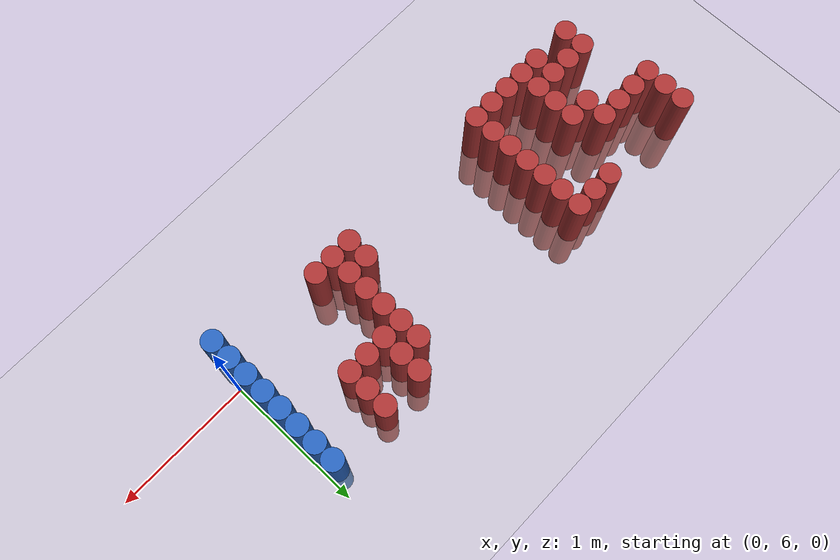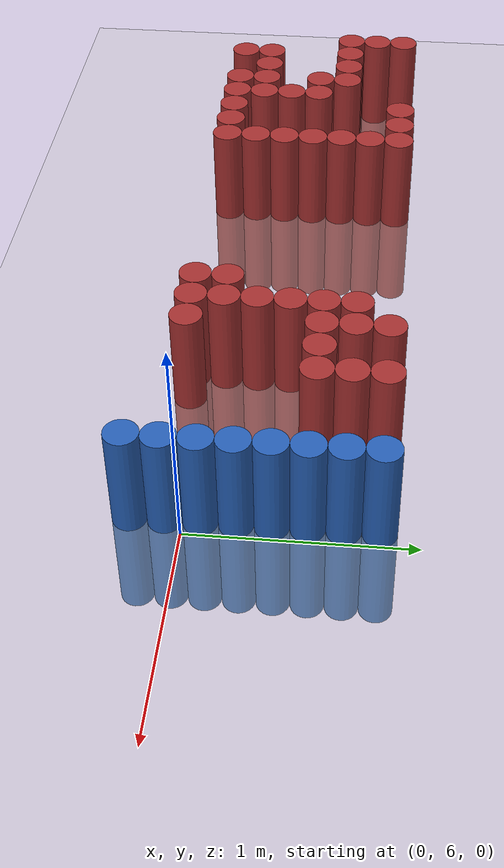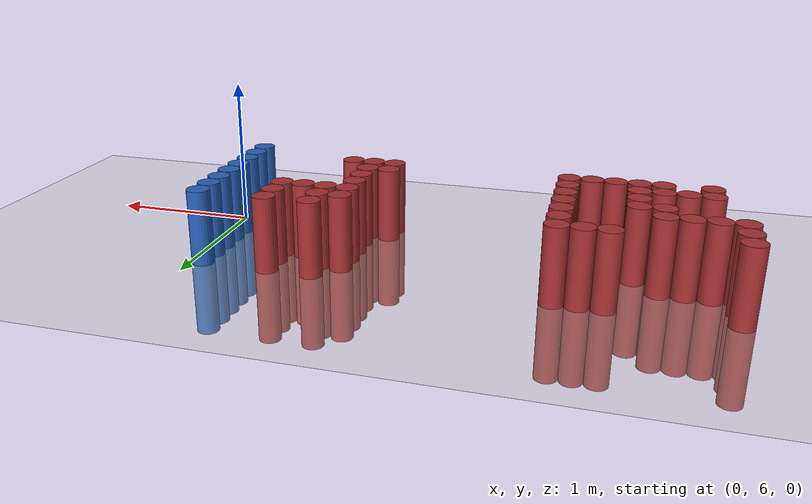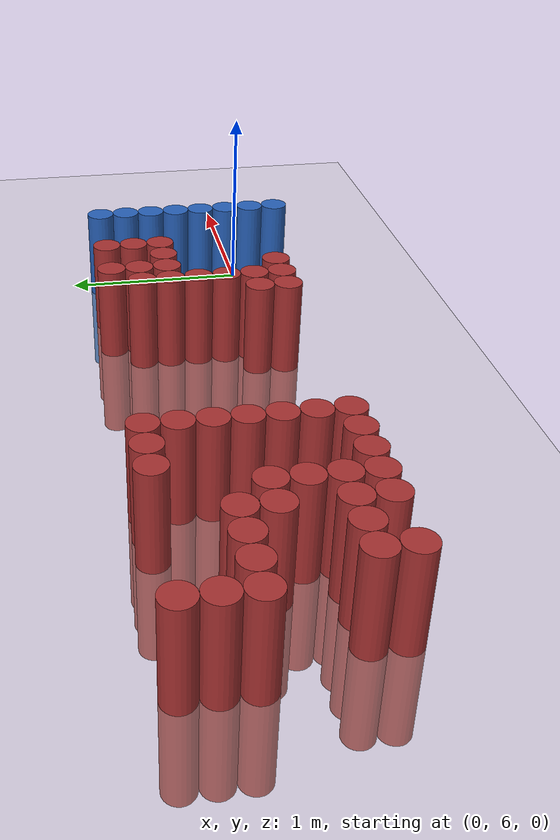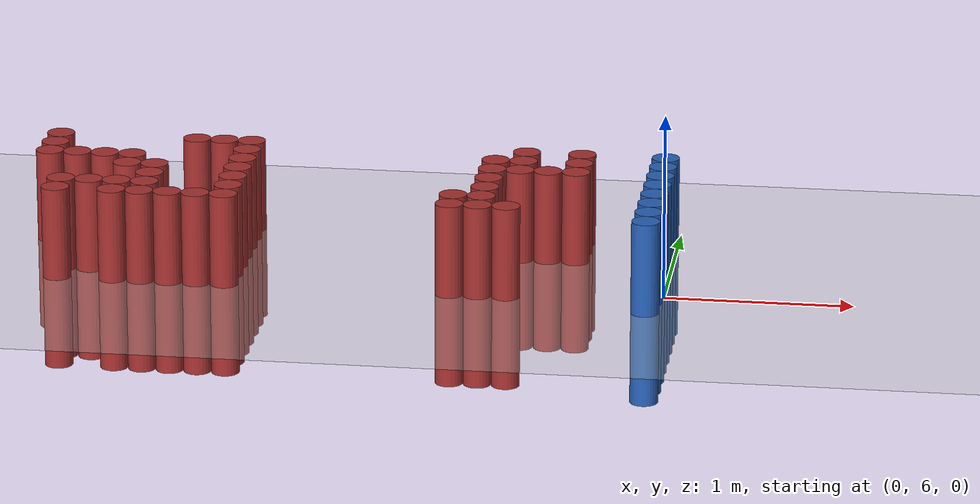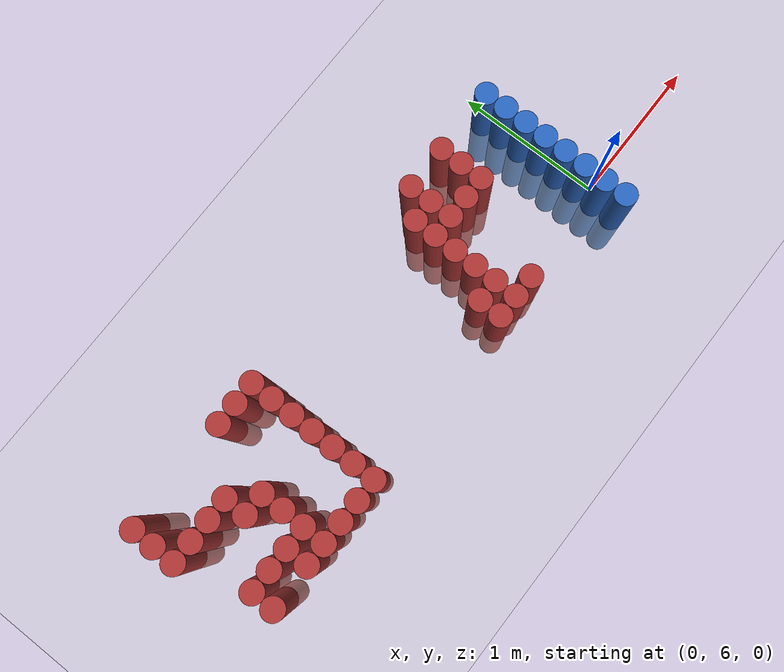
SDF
<sdf version="1.6">
 <world name="default">
  <model name="ground_plane">
   <static>1</static>
   <link name="link">
    <collision name="collision">
     <geometry><plane><normal>0 0 1</normal><size>100 100</size></plane></geometry>
     <surface><friction><ode><mu>100</mu><mu2>50</mu2></ode></friction></surface>
    </collision>
    <visual name="visual">
     <cast_shadows>0</cast_shadows>
     <geometry><plane><normal>0 0 1</normal><size>100 100</size></plane></geometry>
     <material>
      <script><uri>file://media/materials/scripts/gazebo.material</uri><name>Gazebo/Grey</name></script>
     </material>
    </visual>
   </link>
  </model>
  <model name="unit_cylinder_163">
   <static>1</static>
   <pose>-3.375000 6.525000 0.000000 0.000000 0.000000 0.000000</pose>
   <link name="link">
    <inertial>
     <mass>1</mass>
     <inertia><ixx>0.145833</ixx><ixy>0</ixy><ixz>0</ixz><iyy>0.145833</iyy><iyz>0</iyz><izz>0.125</izz></inertia>
    </inertial>
    <collision name="collision">
     <geometry><cylinder><radius>0.075000</radius><length>1</length></cylinder></geometry>
    </collision>
    <visual name="visual">
     <geometry><cylinder><radius>0.075000</radius><length>1</length></cylinder></geometry>
     <material>
      <ambient>0.648000 0.192000 0.192000 1</ambient>
      <diffuse>0.648000 0.192000 0.192000 1</diffuse>
     </material>
     <material>
      <script><name>Gazebo/Grey</name><uri>file://media/materials/scripts/gazebo.material</uri></script>
     </material>
    </visual>
   </link>
  </model>
  <model name="unit_cylinder_164">
   <static>1</static>
   <pose>-3.375000 6.675000 0.000000 0.000000 0.000000 0.000000</pose>
   <link name="link">
    <inertial>
     <mass>1</mass>
     <inertia><ixx>0.145833</ixx><ixy>0</ixy><ixz>0</ixz><iyy>0.145833</iyy><iyz>0</iyz><izz>0.125</izz></inertia>
    </inertial>
    <collision name="collision">
     <geometry><cylinder><radius>0.075000</radius><length>1</length></cylinder></geometry>
    </collision>
    <visual name="visual">
     <geometry><cylinder><radius>0.075000</radius><length>1</length></cylinder></geometry>
     <material>
      <ambient>0.648000 0.192000 0.192000 1</ambient>
      <diffuse>0.648000 0.192000 0.192000 1</diffuse>
     </material>
     <material>
      <script><name>Gazebo/Grey</name><uri>file://media/materials/scripts/gazebo.material</uri></script>
     </material>
    </visual>
   </link>
  </model>
  <model name="unit_cylinder_165">
   <static>1</static>
   <pose>-3.375000 6.825000 0.000000 0.000000 0.000000 0.000000</pose>
   <link name="link">
    <inertial>
     <mass>1</mass>
     <inertia><ixx>0.145833</ixx><ixy>0</ixy><ixz>0</ixz><iyy>0.145833</iyy><iyz>0</iyz><izz>0.125</izz></inertia>
    </inertial>
    <collision name="collision">
     <geometry><cylinder><radius>0.075000</radius><length>1</length></cylinder></geometry>
    </collision>
    <visual name="visual">
     <geometry><cylinder><radius>0.075000</radius><length>1</length></cylinder></geometry>
     <material>
      <ambient>0.648000 0.192000 0.192000 1</ambient>
      <diffuse>0.648000 0.192000 0.192000 1</diffuse>
     </material>
     <material>
      <script><name>Gazebo/Grey</name><uri>file://media/materials/scripts/gazebo.material</uri></script>
     </material>
    </visual>
   </link>
  </model>
  <model name="unit_cylinder_170">
   <static>1</static>
   <pose>-3.225000 5.925000 0.000000 0.000000 0.000000 0.000000</pose>
   <link name="link">
    <inertial>
     <mass>1</mass>
     <inertia><ixx>0.145833</ixx><ixy>0</ixy><ixz>0</ixz><iyy>0.145833</iyy><iyz>0</iyz><izz>0.125</izz></inertia>
    </inertial>
    <collision name="collision">
     <geometry><cylinder><radius>0.075000</radius><length>1</length></cylinder></geometry>
    </collision>
    <visual name="visual">
     <geometry><cylinder><radius>0.075000</radius><length>1</length></cylinder></geometry>
     <material>
      <ambient>0.648000 0.192000 0.192000 1</ambient>
      <diffuse>0.648000 0.192000 0.192000 1</diffuse>
     </material>
     <material>
      <script><name>Gazebo/Grey</name><uri>file://media/materials/scripts/gazebo.material</uri></script>
     </material>
    </visual>
   </link>
  </model>
  <model name="unit_cylinder_171">
   <static>1</static>
   <pose>-3.225000 6.075000 0.000000 0.000000 0.000000 0.000000</pose>
   <link name="link">
    <inertial>
     <mass>1</mass>
     <inertia><ixx>0.145833</ixx><ixy>0</ixy><ixz>0</ixz><iyy>0.145833</iyy><iyz>0</iyz><izz>0.125</izz></inertia>
    </inertial>
    <collision name="collision">
     <geometry><cylinder><radius>0.075000</radius><length>1</length></cylinder></geometry>
    </collision>
    <visual name="visual">
     <geometry><cylinder><radius>0.075000</radius><length>1</length></cylinder></geometry>
     <material>
      <ambient>0.648000 0.192000 0.192000 1</ambient>
      <diffuse>0.648000 0.192000 0.192000 1</diffuse>
     </material>
     <material>
      <script><name>Gazebo/Grey</name><uri>file://media/materials/scripts/gazebo.material</uri></script>
     </material>
    </visual>
   </link>
  </model>
  <model name="unit_cylinder_172">
   <static>1</static>
   <pose>-3.225000 6.525000 0.000000 0.000000 0.000000 0.000000</pose>
   <link name="link">
    <inertial>
     <mass>1</mass>
     <inertia><ixx>0.145833</ixx><ixy>0</ixy><ixz>0</ixz><iyy>0.145833</iyy><iyz>0</iyz><izz>0.125</izz></inertia>
    </inertial>
    <collision name="collision">
     <geometry><cylinder><radius>0.075000</radius><length>1</length></cylinder></geometry>
    </collision>
    <visual name="visual">
     <geometry><cylinder><radius>0.075000</radius><length>1</length></cylinder></geometry>
     <material>
      <ambient>0.648000 0.192000 0.192000 1</ambient>
      <diffuse>0.648000 0.192000 0.192000 1</diffuse>
     </material>
     <material>
      <script><name>Gazebo/Grey</name><uri>file://media/materials/scripts/gazebo.material</uri></script>
     </material>
    </visual>
   </link>
  </model>
  <model name="unit_cylinder_180">
   <static>1</static>
   <pose>-3.075000 6.075000 0.000000 0.000000 0.000000 0.000000</pose>
   <link name="link">
    <inertial>
     <mass>1</mass>
     <inertia><ixx>0.145833</ixx><ixy>0</ixy><ixz>0</ixz><iyy>0.145833</iyy><iyz>0</iyz><izz>0.125</izz></inertia>
    </inertial>
    <collision name="collision">
     <geometry><cylinder><radius>0.075000</radius><length>1</length></cylinder></geometry>
    </collision>
    <visual name="visual">
     <geometry><cylinder><radius>0.075000</radius><length>1</length></cylinder></geometry>
     <material>
      <ambient>0.648000 0.192000 0.192000 1</ambient>
      <diffuse>0.648000 0.192000 0.192000 1</diffuse>
     </material>
     <material>
      <script><name>Gazebo/Grey</name><uri>file://media/materials/scripts/gazebo.material</uri></script>
     </material>
    </visual>
   </link>
  </model>
  <model name="unit_cylinder_181">
   <static>1</static>
   <pose>-3.075000 6.525000 0.000000 0.000000 0.000000 0.000000</pose>
   <link name="link">
    <inertial>
     <mass>1</mass>
     <inertia><ixx>0.145833</ixx><ixy>0</ixy><ixz>0</ixz><iyy>0.145833</iyy><iyz>0</iyz><izz>0.125</izz></inertia>
    </inertial>
    <collision name="collision">
     <geometry><cylinder><radius>0.075000</radius><length>1</length></cylinder></geometry>
    </collision>
    <visual name="visual">
     <geometry><cylinder><radius>0.075000</radius><length>1</length></cylinder></geometry>
     <material>
      <ambient>0.648000 0.192000 0.192000 1</ambient>
      <diffuse>0.648000 0.192000 0.192000 1</diffuse>
     </material>
     <material>
      <script><name>Gazebo/Grey</name><uri>file://media/materials/scripts/gazebo.material</uri></script>
     </material>
    </visual>
   </link>
  </model>
  <model name="unit_cylinder_191">
   <static>1</static>
   <pose>-2.925000 5.925000 0.000000 0.000000 0.000000 0.000000</pose>
   <link name="link">
    <inertial>
     <mass>1</mass>
     <inertia><ixx>0.145833</ixx><ixy>0</ixy><ixz>0</ixz><iyy>0.145833</iyy><iyz>0</iyz><izz>0.125</izz></inertia>
    </inertial>
    <collision name="collision">
     <geometry><cylinder><radius>0.075000</radius><length>1</length></cylinder></geometry>
    </collision>
    <visual name="visual">
     <geometry><cylinder><radius>0.075000</radius><length>1</length></cylinder></geometry>
     <material>
      <ambient>0.648000 0.192000 0.192000 1</ambient>
      <diffuse>0.648000 0.192000 0.192000 1</diffuse>
     </material>
     <material>
      <script><name>Gazebo/Grey</name><uri>file://media/materials/scripts/gazebo.material</uri></script>
     </material>
    </visual>
   </link>
  </model>
  <model name="unit_cylinder_192">
   <static>1</static>
   <pose>-2.925000 6.075000 0.000000 0.000000 0.000000 0.000000</pose>
   <link name="link">
    <inertial>
     <mass>1</mass>
     <inertia><ixx>0.145833</ixx><ixy>0</ixy><ixz>0</ixz><iyy>0.145833</iyy><iyz>0</iyz><izz>0.125</izz></inertia>
    </inertial>
    <collision name="collision">
     <geometry><cylinder><radius>0.075000</radius><length>1</length></cylinder></geometry>
    </collision>
    <visual name="visual">
     <geometry><cylinder><radius>0.075000</radius><length>1</length></cylinder></geometry>
     <material>
      <ambient>0.648000 0.192000 0.192000 1</ambient>
      <diffuse>0.648000 0.192000 0.192000 1</diffuse>
     </material>
     <material>
      <script><name>Gazebo/Grey</name><uri>file://media/materials/scripts/gazebo.material</uri></script>
     </material>
    </visual>
   </link>
  </model>
  <model name="unit_cylinder_193">
   <static>1</static>
   <pose>-2.925000 6.375000 0.000000 0.000000 0.000000 0.000000</pose>
   <link name="link">
    <inertial>
     <mass>1</mass>
     <inertia><ixx>0.145833</ixx><ixy>0</ixy><ixz>0</ixz><iyy>0.145833</iyy><iyz>0</iyz><izz>0.125</izz></inertia>
    </inertial>
    <collision name="collision">
     <geometry><cylinder><radius>0.075000</radius><length>1</length></cylinder></geometry>
    </collision>
    <visual name="visual">
     <geometry><cylinder><radius>0.075000</radius><length>1</length></cylinder></geometry>
     <material>
      <ambient>0.648000 0.192000 0.192000 1</ambient>
      <diffuse>0.648000 0.192000 0.192000 1</diffuse>
     </material>
     <material>
      <script><name>Gazebo/Grey</name><uri>file://media/materials/scripts/gazebo.material</uri></script>
     </material>
    </visual>
   </link>
  </model>
  <model name="unit_cylinder_194">
   <static>1</static>
   <pose>-2.925000 6.525000 0.000000 0.000000 0.000000 0.000000</pose>
   <link name="link">
    <inertial>
     <mass>1</mass>
     <inertia><ixx>0.145833</ixx><ixy>0</ixy><ixz>0</ixz><iyy>0.145833</iyy><iyz>0</iyz><izz>0.125</izz></inertia>
    </inertial>
    <collision name="collision">
     <geometry><cylinder><radius>0.075000</radius><length>1</length></cylinder></geometry>
    </collision>
    <visual name="visual">
     <geometry><cylinder><radius>0.075000</radius><length>1</length></cylinder></geometry>
     <material>
      <ambient>0.648000 0.192000 0.192000 1</ambient>
      <diffuse>0.648000 0.192000 0.192000 1</diffuse>
     </material>
     <material>
      <script><name>Gazebo/Grey</name><uri>file://media/materials/scripts/gazebo.material</uri></script>
     </material>
    </visual>
   </link>
  </model>
  <model name="unit_cylinder_199">
   <static>1</static>
   <pose>-2.775000 5.925000 0.000000 0.000000 0.000000 0.000000</pose>
   <link name="link">
    <inertial>
     <mass>1</mass>
     <inertia><ixx>0.145833</ixx><ixy>0</ixy><ixz>0</ixz><iyy>0.145833</iyy><iyz>0</iyz><izz>0.125</izz></inertia>
    </inertial>
    <collision name="collision">
     <geometry><cylinder><radius>0.075000</radius><length>1</length></cylinder></geometry>
    </collision>
    <visual name="visual">
     <geometry><cylinder><radius>0.075000</radius><length>1</length></cylinder></geometry>
     <material>
      <ambient>0.648000 0.192000 0.192000 1</ambient>
      <diffuse>0.648000 0.192000 0.192000 1</diffuse>
     </material>
     <material>
      <script><name>Gazebo/Grey</name><uri>file://media/materials/scripts/gazebo.material</uri></script>
     </material>
    </visual>
   </link>
  </model>
  <model name="unit_cylinder_200">
   <static>1</static>
   <pose>-2.775000 6.075000 0.000000 0.000000 0.000000 0.000000</pose>
   <link name="link">
    <inertial>
     <mass>1</mass>
     <inertia><ixx>0.145833</ixx><ixy>0</ixy><ixz>0</ixz><iyy>0.145833</iyy><iyz>0</iyz><izz>0.125</izz></inertia>
    </inertial>
    <collision name="collision">
     <geometry><cylinder><radius>0.075000</radius><length>1</length></cylinder></geometry>
    </collision>
    <visual name="visual">
     <geometry><cylinder><radius>0.075000</radius><length>1</length></cylinder></geometry>
     <material>
      <ambient>0.648000 0.192000 0.192000 1</ambient>
      <diffuse>0.648000 0.192000 0.192000 1</diffuse>
     </material>
     <material>
      <script><name>Gazebo/Grey</name><uri>file://media/materials/scripts/gazebo.material</uri></script>
     </material>
    </visual>
   </link>
  </model>
  <model name="unit_cylinder_201">
   <static>1</static>
   <pose>-2.775000 6.225000 0.000000 0.000000 0.000000 0.000000</pose>
   <link name="link">
    <inertial>
     <mass>1</mass>
     <inertia><ixx>0.145833</ixx><ixy>0</ixy><ixz>0</ixz><iyy>0.145833</iyy><iyz>0</iyz><izz>0.125</izz></inertia>
    </inertial>
    <collision name="collision">
     <geometry><cylinder><radius>0.075000</radius><length>1</length></cylinder></geometry>
    </collision>
    <visual name="visual">
     <geometry><cylinder><radius>0.075000</radius><length>1</length></cylinder></geometry>
     <material>
      <ambient>0.648000 0.192000 0.192000 1</ambient>
      <diffuse>0.648000 0.192000 0.192000 1</diffuse>
     </material>
     <material>
      <script><name>Gazebo/Grey</name><uri>file://media/materials/scripts/gazebo.material</uri></script>
     </material>
    </visual>
   </link>
  </model>
  <model name="unit_cylinder_202">
   <static>1</static>
   <pose>-2.775000 6.375000 0.000000 0.000000 0.000000 0.000000</pose>
   <link name="link">
    <inertial>
     <mass>1</mass>
     <inertia><ixx>0.145833</ixx><ixy>0</ixy><ixz>0</ixz><iyy>0.145833</iyy><iyz>0</iyz><izz>0.125</izz></inertia>
    </inertial>
    <collision name="collision">
     <geometry><cylinder><radius>0.075000</radius><length>1</length></cylinder></geometry>
    </collision>
    <visual name="visual">
     <geometry><cylinder><radius>0.075000</radius><length>1</length></cylinder></geometry>
     <material>
      <ambient>0.648000 0.192000 0.192000 1</ambient>
      <diffuse>0.648000 0.192000 0.192000 1</diffuse>
     </material>
     <material>
      <script><name>Gazebo/Grey</name><uri>file://media/materials/scripts/gazebo.material</uri></script>
     </material>
    </visual>
   </link>
  </model>
  <model name="unit_cylinder_206">
   <static>1</static>
   <pose>-2.625000 5.925000 0.000000 0.000000 0.000000 0.000000</pose>
   <link name="link">
    <inertial>
     <mass>1</mass>
     <inertia><ixx>0.145833</ixx><ixy>0</ixy><ixz>0</ixz><iyy>0.145833</iyy><iyz>0</iyz><izz>0.125</izz></inertia>
    </inertial>
    <collision name="collision">
     <geometry><cylinder><radius>0.075000</radius><length>1</length></cylinder></geometry>
    </collision>
    <visual name="visual">
     <geometry><cylinder><radius>0.075000</radius><length>1</length></cylinder></geometry>
     <material>
      <ambient>0.648000 0.192000 0.192000 1</ambient>
      <diffuse>0.648000 0.192000 0.192000 1</diffuse>
     </material>
     <material>
      <script><name>Gazebo/Grey</name><uri>file://media/materials/scripts/gazebo.material</uri></script>
     </material>
    </visual>
   </link>
  </model>
  <model name="unit_cylinder_207">
   <static>1</static>
   <pose>-2.625000 6.825000 0.000000 0.000000 0.000000 0.000000</pose>
   <link name="link">
    <inertial>
     <mass>1</mass>
     <inertia><ixx>0.145833</ixx><ixy>0</ixy><ixz>0</ixz><iyy>0.145833</iyy><iyz>0</iyz><izz>0.125</izz></inertia>
    </inertial>
    <collision name="collision">
     <geometry><cylinder><radius>0.075000</radius><length>1</length></cylinder></geometry>
    </collision>
    <visual name="visual">
     <geometry><cylinder><radius>0.075000</radius><length>1</length></cylinder></geometry>
     <material>
      <ambient>0.648000 0.192000 0.192000 1</ambient>
      <diffuse>0.648000 0.192000 0.192000 1</diffuse>
     </material>
     <material>
      <script><name>Gazebo/Grey</name><uri>file://media/materials/scripts/gazebo.material</uri></script>
     </material>
    </visual>
   </link>
  </model>
  <model name="unit_cylinder_214">
   <static>1</static>
   <pose>-2.475000 5.925000 0.000000 0.000000 0.000000 0.000000</pose>
   <link name="link">
    <inertial>
     <mass>1</mass>
     <inertia><ixx>0.145833</ixx><ixy>0</ixy><ixz>0</ixz><iyy>0.145833</iyy><iyz>0</iyz><izz>0.125</izz></inertia>
    </inertial>
    <collision name="collision">
     <geometry><cylinder><radius>0.075000</radius><length>1</length></cylinder></geometry>
    </collision>
    <visual name="visual">
     <geometry><cylinder><radius>0.075000</radius><length>1</length></cylinder></geometry>
     <material>
      <ambient>0.648000 0.192000 0.192000 1</ambient>
      <diffuse>0.648000 0.192000 0.192000 1</diffuse>
     </material>
     <material>
      <script><name>Gazebo/Grey</name><uri>file://media/materials/scripts/gazebo.material</uri></script>
     </material>
    </visual>
   </link>
  </model>
  <model name="unit_cylinder_215">
   <static>1</static>
   <pose>-2.475000 6.825000 0.000000 0.000000 0.000000 0.000000</pose>
   <link name="link">
    <inertial>
     <mass>1</mass>
     <inertia><ixx>0.145833</ixx><ixy>0</ixy><ixz>0</ixz><iyy>0.145833</iyy><iyz>0</iyz><izz>0.125</izz></inertia>
    </inertial>
    <collision name="collision">
     <geometry><cylinder><radius>0.075000</radius><length>1</length></cylinder></geometry>
    </collision>
    <visual name="visual">
     <geometry><cylinder><radius>0.075000</radius><length>1</length></cylinder></geometry>
     <material>
      <ambient>0.648000 0.192000 0.192000 1</ambient>
      <diffuse>0.648000 0.192000 0.192000 1</diffuse>
     </material>
     <material>
      <script><name>Gazebo/Grey</name><uri>file://media/materials/scripts/gazebo.material</uri></script>
     </material>
    </visual>
   </link>
  </model>
  <model name="unit_cylinder_218">
   <static>1</static>
   <pose>-2.325000 5.925000 0.000000 0.000000 0.000000 0.000000</pose>
   <link name="link">
    <inertial>
     <mass>1</mass>
     <inertia><ixx>0.145833</ixx><ixy>0</ixy><ixz>0</ixz><iyy>0.145833</iyy><iyz>0</iyz><izz>0.125</izz></inertia>
    </inertial>
    <collision name="collision">
     <geometry><cylinder><radius>0.075000</radius><length>1</length></cylinder></geometry>
    </collision>
    <visual name="visual">
     <geometry><cylinder><radius>0.075000</radius><length>1</length></cylinder></geometry>
     <material>
      <ambient>0.648000 0.192000 0.192000 1</ambient>
      <diffuse>0.648000 0.192000 0.192000 1</diffuse>
     </material>
     <material>
      <script><name>Gazebo/Grey</name><uri>file://media/materials/scripts/gazebo.material</uri></script>
     </material>
    </visual>
   </link>
  </model>
  <model name="unit_cylinder_219">
   <static>1</static>
   <pose>-2.325000 6.075000 0.000000 0.000000 0.000000 0.000000</pose>
   <link name="link">
    <inertial>
     <mass>1</mass>
     <inertia><ixx>0.145833</ixx><ixy>0</ixy><ixz>0</ixz><iyy>0.145833</iyy><iyz>0</iyz><izz>0.125</izz></inertia>
    </inertial>
    <collision name="collision">
     <geometry><cylinder><radius>0.075000</radius><length>1</length></cylinder></geometry>
    </collision>
    <visual name="visual">
     <geometry><cylinder><radius>0.075000</radius><length>1</length></cylinder></geometry>
     <material>
      <ambient>0.648000 0.192000 0.192000 1</ambient>
      <diffuse>0.648000 0.192000 0.192000 1</diffuse>
     </material>
     <material>
      <script><name>Gazebo/Grey</name><uri>file://media/materials/scripts/gazebo.material</uri></script>
     </material>
    </visual>
   </link>
  </model>
  <model name="unit_cylinder_220">
   <static>1</static>
   <pose>-2.325000 6.225000 0.000000 0.000000 0.000000 0.000000</pose>
   <link name="link">
    <inertial>
     <mass>1</mass>
     <inertia><ixx>0.145833</ixx><ixy>0</ixy><ixz>0</ixz><iyy>0.145833</iyy><iyz>0</iyz><izz>0.125</izz></inertia>
    </inertial>
    <collision name="collision">
     <geometry><cylinder><radius>0.075000</radius><length>1</length></cylinder></geometry>
    </collision>
    <visual name="visual">
     <geometry><cylinder><radius>0.075000</radius><length>1</length></cylinder></geometry>
     <material>
      <ambient>0.648000 0.192000 0.192000 1</ambient>
      <diffuse>0.648000 0.192000 0.192000 1</diffuse>
     </material>
     <material>
      <script><name>Gazebo/Grey</name><uri>file://media/materials/scripts/gazebo.material</uri></script>
     </material>
    </visual>
   </link>
  </model>
  <model name="unit_cylinder_221">
   <static>1</static>
   <pose>-2.325000 6.375000 0.000000 0.000000 0.000000 0.000000</pose>
   <link name="link">
    <inertial>
     <mass>1</mass>
     <inertia><ixx>0.145833</ixx><ixy>0</ixy><ixz>0</ixz><iyy>0.145833</iyy><iyz>0</iyz><izz>0.125</izz></inertia>
    </inertial>
    <collision name="collision">
     <geometry><cylinder><radius>0.075000</radius><length>1</length></cylinder></geometry>
    </collision>
    <visual name="visual">
     <geometry><cylinder><radius>0.075000</radius><length>1</length></cylinder></geometry>
     <material>
      <ambient>0.648000 0.192000 0.192000 1</ambient>
      <diffuse>0.648000 0.192000 0.192000 1</diffuse>
     </material>
     <material>
      <script><name>Gazebo/Grey</name><uri>file://media/materials/scripts/gazebo.material</uri></script>
     </material>
    </visual>
   </link>
  </model>
  <model name="unit_cylinder_222">
   <static>1</static>
   <pose>-2.325000 6.525000 0.000000 0.000000 0.000000 0.000000</pose>
   <link name="link">
    <inertial>
     <mass>1</mass>
     <inertia><ixx>0.145833</ixx><ixy>0</ixy><ixz>0</ixz><iyy>0.145833</iyy><iyz>0</iyz><izz>0.125</izz></inertia>
    </inertial>
    <collision name="collision">
     <geometry><cylinder><radius>0.075000</radius><length>1</length></cylinder></geometry>
    </collision>
    <visual name="visual">
     <geometry><cylinder><radius>0.075000</radius><length>1</length></cylinder></geometry>
     <material>
      <ambient>0.648000 0.192000 0.192000 1</ambient>
      <diffuse>0.648000 0.192000 0.192000 1</diffuse>
     </material>
     <material>
      <script><name>Gazebo/Grey</name><uri>file://media/materials/scripts/gazebo.material</uri></script>
     </material>
    </visual>
   </link>
  </model>
  <model name="unit_cylinder_223">
   <static>1</static>
   <pose>-2.325000 6.675000 0.000000 0.000000 0.000000 0.000000</pose>
   <link name="link">
    <inertial>
     <mass>1</mass>
     <inertia><ixx>0.145833</ixx><ixy>0</ixy><ixz>0</ixz><iyy>0.145833</iyy><iyz>0</iyz><izz>0.125</izz></inertia>
    </inertial>
    <collision name="collision">
     <geometry><cylinder><radius>0.075000</radius><length>1</length></cylinder></geometry>
    </collision>
    <visual name="visual">
     <geometry><cylinder><radius>0.075000</radius><length>1</length></cylinder></geometry>
     <material>
      <ambient>0.648000 0.192000 0.192000 1</ambient>
      <diffuse>0.648000 0.192000 0.192000 1</diffuse>
     </material>
     <material>
      <script><name>Gazebo/Grey</name><uri>file://media/materials/scripts/gazebo.material</uri></script>
     </material>
    </visual>
   </link>
  </model>
  <model name="unit_cylinder_224">
   <static>1</static>
   <pose>-2.325000 6.825000 0.000000 0.000000 0.000000 0.000000</pose>
   <link name="link">
    <inertial>
     <mass>1</mass>
     <inertia><ixx>0.145833</ixx><ixy>0</ixy><ixz>0</ixz><iyy>0.145833</iyy><iyz>0</iyz><izz>0.125</izz></inertia>
    </inertial>
    <collision name="collision">
     <geometry><cylinder><radius>0.075000</radius><length>1</length></cylinder></geometry>
    </collision>
    <visual name="visual">
     <geometry><cylinder><radius>0.075000</radius><length>1</length></cylinder></geometry>
     <material>
      <ambient>0.648000 0.192000 0.192000 1</ambient>
      <diffuse>0.648000 0.192000 0.192000 1</diffuse>
     </material>
     <material>
      <script><name>Gazebo/Grey</name><uri>file://media/materials/scripts/gazebo.material</uri></script>
     </material>
    </visual>
   </link>
  </model>
  <model name="unit_cylinder_239">
   <static>1</static>
   <pose>-1.125000 5.925000 0.000000 0.000000 0.000000 0.000000</pose>
   <link name="link">
    <inertial>
     <mass>1</mass>
     <inertia><ixx>0.145833</ixx><ixy>0</ixy><ixz>0</ixz><iyy>0.145833</iyy><iyz>0</iyz><izz>0.125</izz></inertia>
    </inertial>
    <collision name="collision">
     <geometry><cylinder><radius>0.075000</radius><length>1</length></cylinder></geometry>
    </collision>
    <visual name="visual">
     <geometry><cylinder><radius>0.075000</radius><length>1</length></cylinder></geometry>
     <material>
      <ambient>0.648000 0.192000 0.192000 1</ambient>
      <diffuse>0.648000 0.192000 0.192000 1</diffuse>
     </material>
     <material>
      <script><name>Gazebo/Grey</name><uri>file://media/materials/scripts/gazebo.material</uri></script>
     </material>
    </visual>
   </link>
  </model>
  <model name="unit_cylinder_240">
   <static>1</static>
   <pose>-1.125000 6.075000 0.000000 0.000000 0.000000 0.000000</pose>
   <link name="link">
    <inertial>
     <mass>1</mass>
     <inertia><ixx>0.145833</ixx><ixy>0</ixy><ixz>0</ixz><iyy>0.145833</iyy><iyz>0</iyz><izz>0.125</izz></inertia>
    </inertial>
    <collision name="collision">
     <geometry><cylinder><radius>0.075000</radius><length>1</length></cylinder></geometry>
    </collision>
    <visual name="visual">
     <geometry><cylinder><radius>0.075000</radius><length>1</length></cylinder></geometry>
     <material>
      <ambient>0.648000 0.192000 0.192000 1</ambient>
      <diffuse>0.648000 0.192000 0.192000 1</diffuse>
     </material>
     <material>
      <script><name>Gazebo/Grey</name><uri>file://media/materials/scripts/gazebo.material</uri></script>
     </material>
    </visual>
   </link>
  </model>
  <model name="unit_cylinder_245">
   <static>1</static>
   <pose>-0.975000 5.925000 0.000000 0.000000 0.000000 0.000000</pose>
   <link name="link">
    <inertial>
     <mass>1</mass>
     <inertia><ixx>0.145833</ixx><ixy>0</ixy><ixz>0</ixz><iyy>0.145833</iyy><iyz>0</iyz><izz>0.125</izz></inertia>
    </inertial>
    <collision name="collision">
     <geometry><cylinder><radius>0.075000</radius><length>1</length></cylinder></geometry>
    </collision>
    <visual name="visual">
     <geometry><cylinder><radius>0.075000</radius><length>1</length></cylinder></geometry>
     <material>
      <ambient>0.648000 0.192000 0.192000 1</ambient>
      <diffuse>0.648000 0.192000 0.192000 1</diffuse>
     </material>
     <material>
      <script><name>Gazebo/Grey</name><uri>file://media/materials/scripts/gazebo.material</uri></script>
     </material>
    </visual>
   </link>
  </model>
  <model name="unit_cylinder_246">
   <static>1</static>
   <pose>-0.975000 6.075000 0.000000 0.000000 0.000000 0.000000</pose>
   <link name="link">
    <inertial>
     <mass>1</mass>
     <inertia><ixx>0.145833</ixx><ixy>0</ixy><ixz>0</ixz><iyy>0.145833</iyy><iyz>0</iyz><izz>0.125</izz></inertia>
    </inertial>
    <collision name="collision">
     <geometry><cylinder><radius>0.075000</radius><length>1</length></cylinder></geometry>
    </collision>
    <visual name="visual">
     <geometry><cylinder><radius>0.075000</radius><length>1</length></cylinder></geometry>
     <material>
      <ambient>0.648000 0.192000 0.192000 1</ambient>
      <diffuse>0.648000 0.192000 0.192000 1</diffuse>
     </material>
     <material>
      <script><name>Gazebo/Grey</name><uri>file://media/materials/scripts/gazebo.material</uri></script>
     </material>
    </visual>
   </link>
  </model>
  <model name="unit_cylinder_247">
   <static>1</static>
   <pose>-0.975000 6.225000 0.000000 0.000000 0.000000 0.000000</pose>
   <link name="link">
    <inertial>
     <mass>1</mass>
     <inertia><ixx>0.145833</ixx><ixy>0</ixy><ixz>0</ixz><iyy>0.145833</iyy><iyz>0</iyz><izz>0.125</izz></inertia>
    </inertial>
    <collision name="collision">
     <geometry><cylinder><radius>0.075000</radius><length>1</length></cylinder></geometry>
    </collision>
    <visual name="visual">
     <geometry><cylinder><radius>0.075000</radius><length>1</length></cylinder></geometry>
     <material>
      <ambient>0.648000 0.192000 0.192000 1</ambient>
      <diffuse>0.648000 0.192000 0.192000 1</diffuse>
     </material>
     <material>
      <script><name>Gazebo/Grey</name><uri>file://media/materials/scripts/gazebo.material</uri></script>
     </material>
    </visual>
   </link>
  </model>
  <model name="unit_cylinder_248">
   <static>1</static>
   <pose>-0.975000 6.375000 0.000000 0.000000 0.000000 0.000000</pose>
   <link name="link">
    <inertial>
     <mass>1</mass>
     <inertia><ixx>0.145833</ixx><ixy>0</ixy><ixz>0</ixz><iyy>0.145833</iyy><iyz>0</iyz><izz>0.125</izz></inertia>
    </inertial>
    <collision name="collision">
     <geometry><cylinder><radius>0.075000</radius><length>1</length></cylinder></geometry>
    </collision>
    <visual name="visual">
     <geometry><cylinder><radius>0.075000</radius><length>1</length></cylinder></geometry>
     <material>
      <ambient>0.648000 0.192000 0.192000 1</ambient>
      <diffuse>0.648000 0.192000 0.192000 1</diffuse>
     </material>
     <material>
      <script><name>Gazebo/Grey</name><uri>file://media/materials/scripts/gazebo.material</uri></script>
     </material>
    </visual>
   </link>
  </model>
  <model name="unit_cylinder_249">
   <static>1</static>
   <pose>-0.975000 6.525000 0.000000 0.000000 0.000000 0.000000</pose>
   <link name="link">
    <inertial>
     <mass>1</mass>
     <inertia><ixx>0.145833</ixx><ixy>0</ixy><ixz>0</ixz><iyy>0.145833</iyy><iyz>0</iyz><izz>0.125</izz></inertia>
    </inertial>
    <collision name="collision">
     <geometry><cylinder><radius>0.075000</radius><length>1</length></cylinder></geometry>
    </collision>
    <visual name="visual">
     <geometry><cylinder><radius>0.075000</radius><length>1</length></cylinder></geometry>
     <material>
      <ambient>0.648000 0.192000 0.192000 1</ambient>
      <diffuse>0.648000 0.192000 0.192000 1</diffuse>
     </material>
     <material>
      <script><name>Gazebo/Grey</name><uri>file://media/materials/scripts/gazebo.material</uri></script>
     </material>
    </visual>
   </link>
  </model>
  <model name="unit_cylinder_250">
   <static>1</static>
   <pose>-0.975000 6.675000 0.000000 0.000000 0.000000 0.000000</pose>
   <link name="link">
    <inertial>
     <mass>1</mass>
     <inertia><ixx>0.145833</ixx><ixy>0</ixy><ixz>0</ixz><iyy>0.145833</iyy><iyz>0</iyz><izz>0.125</izz></inertia>
    </inertial>
    <collision name="collision">
     <geometry><cylinder><radius>0.075000</radius><length>1</length></cylinder></geometry>
    </collision>
    <visual name="visual">
     <geometry><cylinder><radius>0.075000</radius><length>1</length></cylinder></geometry>
     <material>
      <ambient>0.648000 0.192000 0.192000 1</ambient>
      <diffuse>0.648000 0.192000 0.192000 1</diffuse>
     </material>
     <material>
      <script><name>Gazebo/Grey</name><uri>file://media/materials/scripts/gazebo.material</uri></script>
     </material>
    </visual>
   </link>
  </model>
  <model name="unit_cylinder_254">
   <static>1</static>
   <pose>-0.825000 5.925000 0.000000 0.000000 0.000000 0.000000</pose>
   <link name="link">
    <inertial>
     <mass>1</mass>
     <inertia><ixx>0.145833</ixx><ixy>0</ixy><ixz>0</ixz><iyy>0.145833</iyy><iyz>0</iyz><izz>0.125</izz></inertia>
    </inertial>
    <collision name="collision">
     <geometry><cylinder><radius>0.075000</radius><length>1</length></cylinder></geometry>
    </collision>
    <visual name="visual">
     <geometry><cylinder><radius>0.075000</radius><length>1</length></cylinder></geometry>
     <material>
      <ambient>0.648000 0.192000 0.192000 1</ambient>
      <diffuse>0.648000 0.192000 0.192000 1</diffuse>
     </material>
     <material>
      <script><name>Gazebo/Grey</name><uri>file://media/materials/scripts/gazebo.material</uri></script>
     </material>
    </visual>
   </link>
  </model>
  <model name="unit_cylinder_255">
   <static>1</static>
   <pose>-0.825000 6.525000 0.000000 0.000000 0.000000 0.000000</pose>
   <link name="link">
    <inertial>
     <mass>1</mass>
     <inertia><ixx>0.145833</ixx><ixy>0</ixy><ixz>0</ixz><iyy>0.145833</iyy><iyz>0</iyz><izz>0.125</izz></inertia>
    </inertial>
    <collision name="collision">
     <geometry><cylinder><radius>0.075000</radius><length>1</length></cylinder></geometry>
    </collision>
    <visual name="visual">
     <geometry><cylinder><radius>0.075000</radius><length>1</length></cylinder></geometry>
     <material>
      <ambient>0.648000 0.192000 0.192000 1</ambient>
      <diffuse>0.648000 0.192000 0.192000 1</diffuse>
     </material>
     <material>
      <script><name>Gazebo/Grey</name><uri>file://media/materials/scripts/gazebo.material</uri></script>
     </material>
    </visual>
   </link>
  </model>
  <model name="unit_cylinder_256">
   <static>1</static>
   <pose>-0.825000 6.675000 0.000000 0.000000 0.000000 0.000000</pose>
   <link name="link">
    <inertial>
     <mass>1</mass>
     <inertia><ixx>0.145833</ixx><ixy>0</ixy><ixz>0</ixz><iyy>0.145833</iyy><iyz>0</iyz><izz>0.125</izz></inertia>
    </inertial>
    <collision name="collision">
     <geometry><cylinder><radius>0.075000</radius><length>1</length></cylinder></geometry>
    </collision>
    <visual name="visual">
     <geometry><cylinder><radius>0.075000</radius><length>1</length></cylinder></geometry>
     <material>
      <ambient>0.648000 0.192000 0.192000 1</ambient>
      <diffuse>0.648000 0.192000 0.192000 1</diffuse>
     </material>
     <material>
      <script><name>Gazebo/Grey</name><uri>file://media/materials/scripts/gazebo.material</uri></script>
     </material>
    </visual>
   </link>
  </model>
  <model name="unit_cylinder_257">
   <static>1</static>
   <pose>-0.825000 6.825000 0.000000 0.000000 0.000000 0.000000</pose>
   <link name="link">
    <inertial>
     <mass>1</mass>
     <inertia><ixx>0.145833</ixx><ixy>0</ixy><ixz>0</ixz><iyy>0.145833</iyy><iyz>0</iyz><izz>0.125</izz></inertia>
    </inertial>
    <collision name="collision">
     <geometry><cylinder><radius>0.075000</radius><length>1</length></cylinder></geometry>
    </collision>
    <visual name="visual">
     <geometry><cylinder><radius>0.075000</radius><length>1</length></cylinder></geometry>
     <material>
      <ambient>0.648000 0.192000 0.192000 1</ambient>
      <diffuse>0.648000 0.192000 0.192000 1</diffuse>
     </material>
     <material>
      <script><name>Gazebo/Grey</name><uri>file://media/materials/scripts/gazebo.material</uri></script>
     </material>
    </visual>
   </link>
  </model>
  <model name="unit_cylinder_262">
   <static>1</static>
   <pose>-0.675000 6.525000 0.000000 0.000000 0.000000 0.000000</pose>
   <link name="link">
    <inertial>
     <mass>1</mass>
     <inertia><ixx>0.145833</ixx><ixy>0</ixy><ixz>0</ixz><iyy>0.145833</iyy><iyz>0</iyz><izz>0.125</izz></inertia>
    </inertial>
    <collision name="collision">
     <geometry><cylinder><radius>0.075000</radius><length>1</length></cylinder></geometry>
    </collision>
    <visual name="visual">
     <geometry><cylinder><radius>0.075000</radius><length>1</length></cylinder></geometry>
     <material>
      <ambient>0.648000 0.192000 0.192000 1</ambient>
      <diffuse>0.648000 0.192000 0.192000 1</diffuse>
     </material>
     <material>
      <script><name>Gazebo/Grey</name><uri>file://media/materials/scripts/gazebo.material</uri></script>
     </material>
    </visual>
   </link>
  </model>
  <model name="unit_cylinder_267">
   <static>1</static>
   <pose>-0.525000 6.525000 0.000000 0.000000 0.000000 0.000000</pose>
   <link name="link">
    <inertial>
     <mass>1</mass>
     <inertia><ixx>0.145833</ixx><ixy>0</ixy><ixz>0</ixz><iyy>0.145833</iyy><iyz>0</iyz><izz>0.125</izz></inertia>
    </inertial>
    <collision name="collision">
     <geometry><cylinder><radius>0.075000</radius><length>1</length></cylinder></geometry>
    </collision>
    <visual name="visual">
     <geometry><cylinder><radius>0.075000</radius><length>1</length></cylinder></geometry>
     <material>
      <ambient>0.648000 0.192000 0.192000 1</ambient>
      <diffuse>0.648000 0.192000 0.192000 1</diffuse>
     </material>
     <material>
      <script><name>Gazebo/Grey</name><uri>file://media/materials/scripts/gazebo.material</uri></script>
     </material>
    </visual>
   </link>
  </model>
  <model name="unit_cylinder_268">
   <static>1</static>
   <pose>-0.525000 6.675000 0.000000 0.000000 0.000000 0.000000</pose>
   <link name="link">
    <inertial>
     <mass>1</mass>
     <inertia><ixx>0.145833</ixx><ixy>0</ixy><ixz>0</ixz><iyy>0.145833</iyy><iyz>0</iyz><izz>0.125</izz></inertia>
    </inertial>
    <collision name="collision">
     <geometry><cylinder><radius>0.075000</radius><length>1</length></cylinder></geometry>
    </collision>
    <visual name="visual">
     <geometry><cylinder><radius>0.075000</radius><length>1</length></cylinder></geometry>
     <material>
      <ambient>0.648000 0.192000 0.192000 1</ambient>
      <diffuse>0.648000 0.192000 0.192000 1</diffuse>
     </material>
     <material>
      <script><name>Gazebo/Grey</name><uri>file://media/materials/scripts/gazebo.material</uri></script>
     </material>
    </visual>
   </link>
  </model>
  <model name="unit_cylinder_269">
   <static>1</static>
   <pose>-0.525000 6.825000 0.000000 0.000000 0.000000 0.000000</pose>
   <link name="link">
    <inertial>
     <mass>1</mass>
     <inertia><ixx>0.145833</ixx><ixy>0</ixy><ixz>0</ixz><iyy>0.145833</iyy><iyz>0</iyz><izz>0.125</izz></inertia>
    </inertial>
    <collision name="collision">
     <geometry><cylinder><radius>0.075000</radius><length>1</length></cylinder></geometry>
    </collision>
    <visual name="visual">
     <geometry><cylinder><radius>0.075000</radius><length>1</length></cylinder></geometry>
     <material>
      <ambient>0.648000 0.192000 0.192000 1</ambient>
      <diffuse>0.648000 0.192000 0.192000 1</diffuse>
     </material>
     <material>
      <script><name>Gazebo/Grey</name><uri>file://media/materials/scripts/gazebo.material</uri></script>
     </material>
    </visual>
   </link>
  </model>
  <model name="unit_cylinder_282">
   <static>1</static>
   <pose>-0.075000 5.775000 0.000000 0.000000 0.000000 0.000000</pose>
   <link name="link">
    <inertial>
     <mass>1</mass>
     <inertia><ixx>0.145833</ixx><ixy>0</ixy><ixz>0</ixz><iyy>0.145833</iyy><iyz>0</iyz><izz>0.125</izz></inertia>
    </inertial>
    <collision name="collision">
     <geometry><cylinder><radius>0.075000</radius><length>1</length></cylinder></geometry>
    </collision>
    <visual name="visual">
     <geometry><cylinder><radius>0.075000</radius><length>1</length></cylinder></geometry>
     <material>
      <ambient>0.152000 0.379000 0.720000 1</ambient>
      <diffuse>0.152000 0.379000 0.720000 1</diffuse>
     </material>
     <material>
      <script><name>Gazebo/Grey</name><uri>file://media/materials/scripts/gazebo.material</uri></script>
     </material>
    </visual>
   </link>
  </model>
  <model name="unit_cylinder_283">
   <static>1</static>
   <pose>-0.075000 5.925000 0.000000 0.000000 0.000000 0.000000</pose>
   <link name="link">
    <inertial>
     <mass>1</mass>
     <inertia><ixx>0.145833</ixx><ixy>0</ixy><ixz>0</ixz><iyy>0.145833</iyy><iyz>0</iyz><izz>0.125</izz></inertia>
    </inertial>
    <collision name="collision">
     <geometry><cylinder><radius>0.075000</radius><length>1</length></cylinder></geometry>
    </collision>
    <visual name="visual">
     <geometry><cylinder><radius>0.075000</radius><length>1</length></cylinder></geometry>
     <material>
      <ambient>0.152000 0.379000 0.720000 1</ambient>
      <diffuse>0.152000 0.379000 0.720000 1</diffuse>
     </material>
     <material>
      <script><name>Gazebo/Grey</name><uri>file://media/materials/scripts/gazebo.material</uri></script>
     </material>
    </visual>
   </link>
  </model>
  <model name="unit_cylinder_284">
   <static>1</static>
   <pose>-0.075000 6.075000 0.000000 0.000000 0.000000 0.000000</pose>
   <link name="link">
    <inertial>
     <mass>1</mass>
     <inertia><ixx>0.145833</ixx><ixy>0</ixy><ixz>0</ixz><iyy>0.145833</iyy><iyz>0</iyz><izz>0.125</izz></inertia>
    </inertial>
    <collision name="collision">
     <geometry><cylinder><radius>0.075000</radius><length>1</length></cylinder></geometry>
    </collision>
    <visual name="visual">
     <geometry><cylinder><radius>0.075000</radius><length>1</length></cylinder></geometry>
     <material>
      <ambient>0.152000 0.379000 0.720000 1</ambient>
      <diffuse>0.152000 0.379000 0.720000 1</diffuse>
     </material>
     <material>
      <script><name>Gazebo/Grey</name><uri>file://media/materials/scripts/gazebo.material</uri></script>
     </material>
    </visual>
   </link>
  </model>
  <model name="unit_cylinder_285">
   <static>1</static>
   <pose>-0.075000 6.225000 0.000000 0.000000 0.000000 0.000000</pose>
   <link name="link">
    <inertial>
     <mass>1</mass>
     <inertia><ixx>0.145833</ixx><ixy>0</ixy><ixz>0</ixz><iyy>0.145833</iyy><iyz>0</iyz><izz>0.125</izz></inertia>
    </inertial>
    <collision name="collision">
     <geometry><cylinder><radius>0.075000</radius><length>1</length></cylinder></geometry>
    </collision>
    <visual name="visual">
     <geometry><cylinder><radius>0.075000</radius><length>1</length></cylinder></geometry>
     <material>
      <ambient>0.152000 0.379000 0.720000 1</ambient>
      <diffuse>0.152000 0.379000 0.720000 1</diffuse>
     </material>
     <material>
      <script><name>Gazebo/Grey</name><uri>file://media/materials/scripts/gazebo.material</uri></script>
     </material>
    </visual>
   </link>
  </model>
  <model name="unit_cylinder_286">
   <static>1</static>
   <pose>-0.075000 6.375000 0.000000 0.000000 0.000000 0.000000</pose>
   <link name="link">
    <inertial>
     <mass>1</mass>
     <inertia><ixx>0.145833</ixx><ixy>0</ixy><ixz>0</ixz><iyy>0.145833</iyy><iyz>0</iyz><izz>0.125</izz></inertia>
    </inertial>
    <collision name="collision">
     <geometry><cylinder><radius>0.075000</radius><length>1</length></cylinder></geometry>
    </collision>
    <visual name="visual">
     <geometry><cylinder><radius>0.075000</radius><length>1</length></cylinder></geometry>
     <material>
      <ambient>0.152000 0.379000 0.720000 1</ambient>
      <diffuse>0.152000 0.379000 0.720000 1</diffuse>
     </material>
     <material>
      <script><name>Gazebo/Grey</name><uri>file://media/materials/scripts/gazebo.material</uri></script>
     </material>
    </visual>
   </link>
  </model>
  <model name="unit_cylinder_287">
   <static>1</static>
   <pose>-0.075000 6.525000 0.000000 0.000000 0.000000 0.000000</pose>
   <link name="link">
    <inertial>
     <mass>1</mass>
     <inertia><ixx>0.145833</ixx><ixy>0</ixy><ixz>0</ixz><iyy>0.145833</iyy><iyz>0</iyz><izz>0.125</izz></inertia>
    </inertial>
    <collision name="collision">
     <geometry><cylinder><radius>0.075000</radius><length>1</length></cylinder></geometry>
    </collision>
    <visual name="visual">
     <geometry><cylinder><radius>0.075000</radius><length>1</length></cylinder></geometry>
     <material>
      <ambient>0.152000 0.379000 0.720000 1</ambient>
      <diffuse>0.152000 0.379000 0.720000 1</diffuse>
     </material>
     <material>
      <script><name>Gazebo/Grey</name><uri>file://media/materials/scripts/gazebo.material</uri></script>
     </material>
    </visual>
   </link>
  </model>
  <model name="unit_cylinder_288">
   <static>1</static>
   <pose>-0.075000 6.675000 0.000000 0.000000 0.000000 0.000000</pose>
   <link name="link">
    <inertial>
     <mass>1</mass>
     <inertia><ixx>0.145833</ixx><ixy>0</ixy><ixz>0</ixz><iyy>0.145833</iyy><iyz>0</iyz><izz>0.125</izz></inertia>
    </inertial>
    <collision name="collision">
     <geometry><cylinder><radius>0.075000</radius><length>1</length></cylinder></geometry>
    </collision>
    <visual name="visual">
     <geometry><cylinder><radius>0.075000</radius><length>1</length></cylinder></geometry>
     <material>
      <ambient>0.152000 0.379000 0.720000 1</ambient>
      <diffuse>0.152000 0.379000 0.720000 1</diffuse>
     </material>
     <material>
      <script><name>Gazebo/Grey</name><uri>file://media/materials/scripts/gazebo.material</uri></script>
     </material>
    </visual>
   </link>
  </model>
  <model name="unit_cylinder_289">
   <static>1</static>
   <pose>-0.075000 6.825000 0.000000 0.000000 0.000000 0.000000</pose>
   <link name="link">
    <inertial>
     <mass>1</mass>
     <inertia><ixx>0.145833</ixx><ixy>0</ixy><ixz>0</ixz><iyy>0.145833</iyy><iyz>0</iyz><izz>0.125</izz></inertia>
    </inertial>
    <collision name="collision">
     <geometry><cylinder><radius>0.075000</radius><length>1</length></cylinder></geometry>
    </collision>
    <visual name="visual">
     <geometry><cylinder><radius>0.075000</radius><length>1</length></cylinder></geometry>
     <material>
      <ambient>0.152000 0.379000 0.720000 1</ambient>
      <diffuse>0.152000 0.379000 0.720000 1</diffuse>
     </material>
     <material>
      <script><name>Gazebo/Grey</name><uri>file://media/materials/scripts/gazebo.material</uri></script>
     </material>
    </visual>
   </link>
  </model>
 </world>
</sdf>
